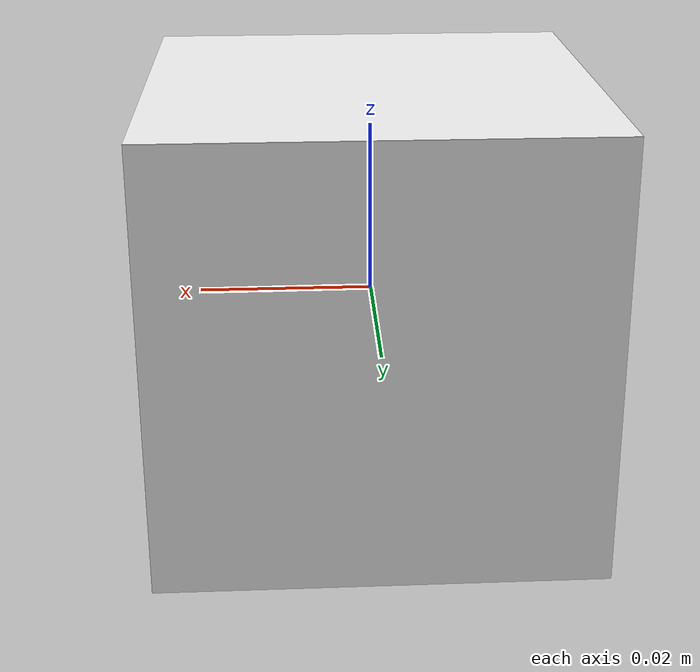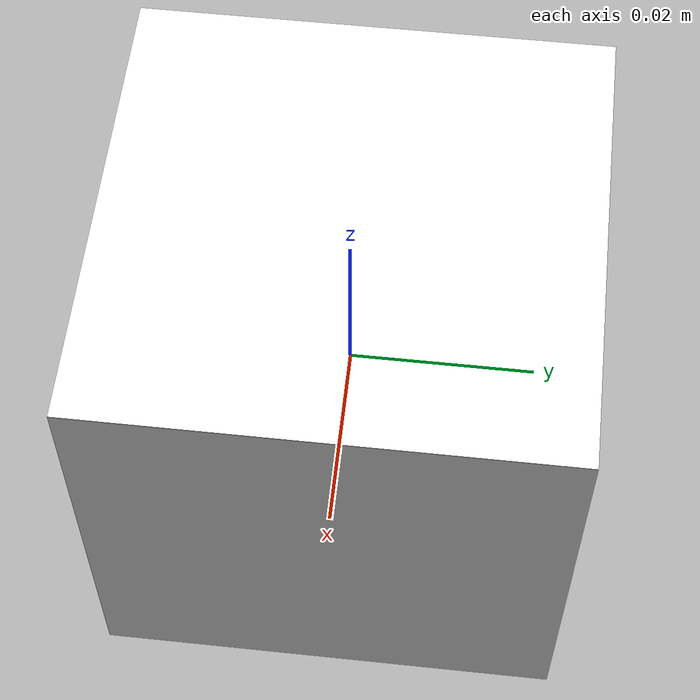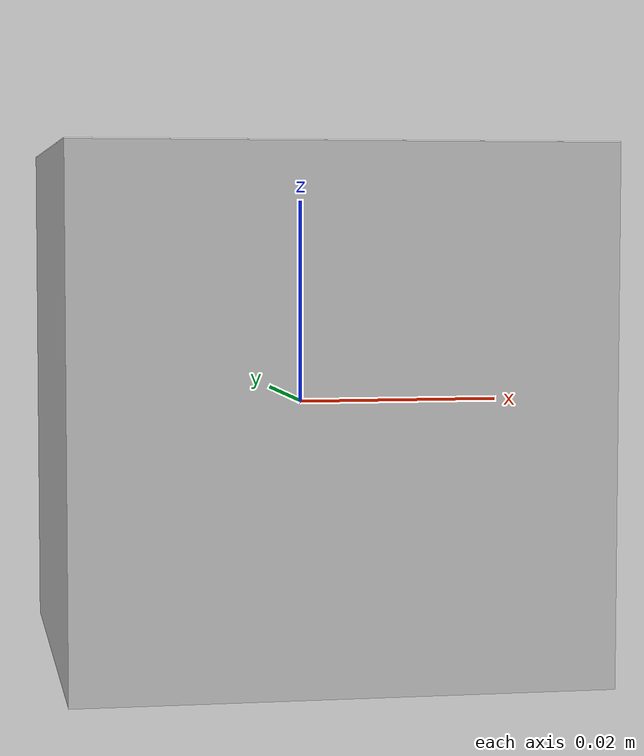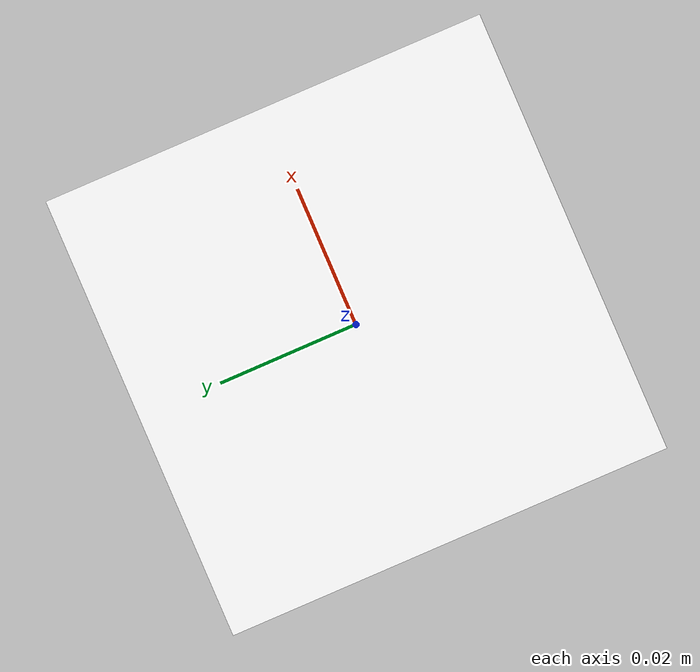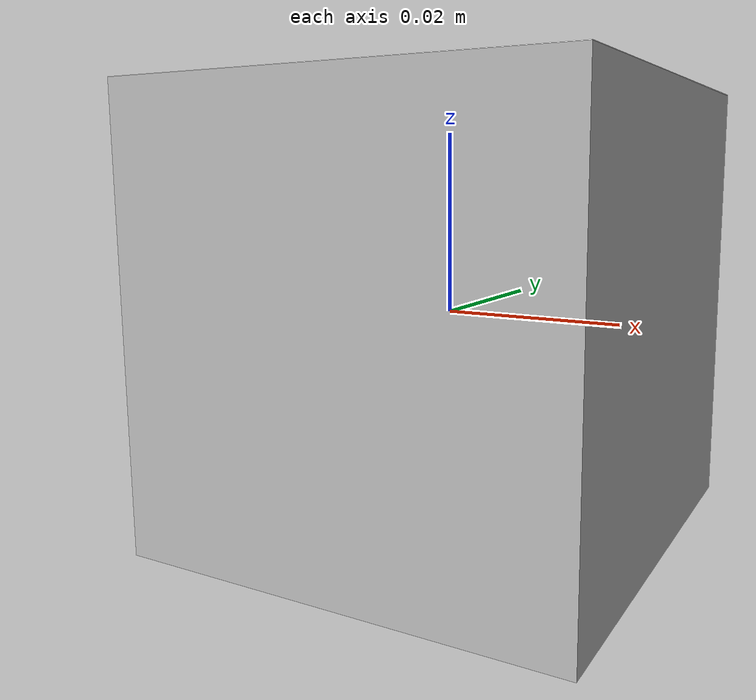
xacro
<?xml version="1.0" encoding="utf-8"?>
<robot name="cube_with_marker">

  <!-- Cube Link -->
  <link name="cube_link">
    <inertial>
      <mass value="1"/>
      <origin xyz="0 0 0" rpy="0 0 0"/>
      <inertia ixx="0.166667" ixy="0" ixz="0"
               iyy="0.166667" iyz="0" izz="0.166667"/>
    </inertial>

    <visual>
      <origin xyz="0 0 0" rpy="0 0 0"/>
      <geometry>
        <box size="0.05 0.05 0.05"/>
      </geometry>
      <material name="grey">
        <color rgba="0.7 0.7 0.7 1"/>
      </material>
    </visual>

    <collision>
      <origin xyz="0 0 0" rpy="0 0 0"/>
      <geometry>
        <box size="0.05 0.05 0.05"/>
      </geometry>
    </collision>
  </link>

  <!-- ArUco Marker Link -->
  <link name="aruco_marker_link">
    <visual>
      <origin xyz="0 0 0" rpy="0 0 0"/>
      <geometry>
        <box size="0.05 0.05 0.0001"/>
      </geometry>
      <material name="ArucoMarker/Marker">
        <color rgba="1 1 1 1"/>
        <!-- You'll need to specify texture file path -->
        <texture filename="package://piper_arm_description/models/aruco_marker/materials/textures/aruco_marker_tex.png"/>
      </material>
    </visual>
  </link>

  <!-- Fixed Joint connecting marker to cube top -->
  <joint name="marker_joint" type="fixed">
    <parent link="cube_link"/>
    <child link="aruco_marker_link"/>
    <origin xyz="0 0 0.025005" rpy="0 0 0"/>
  </joint>

</robot>
